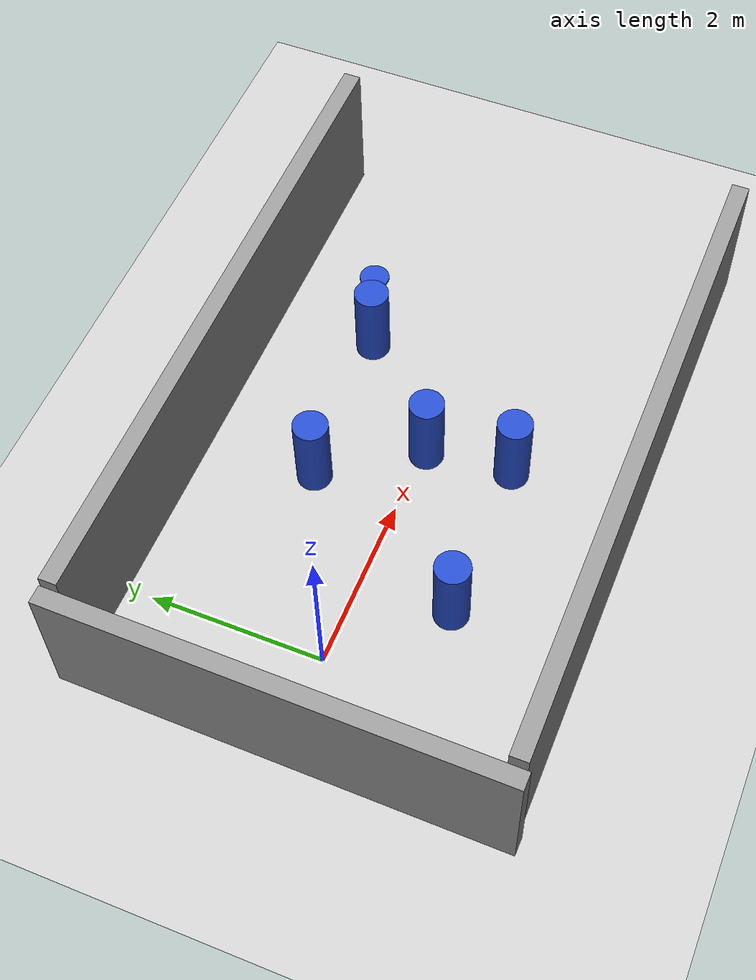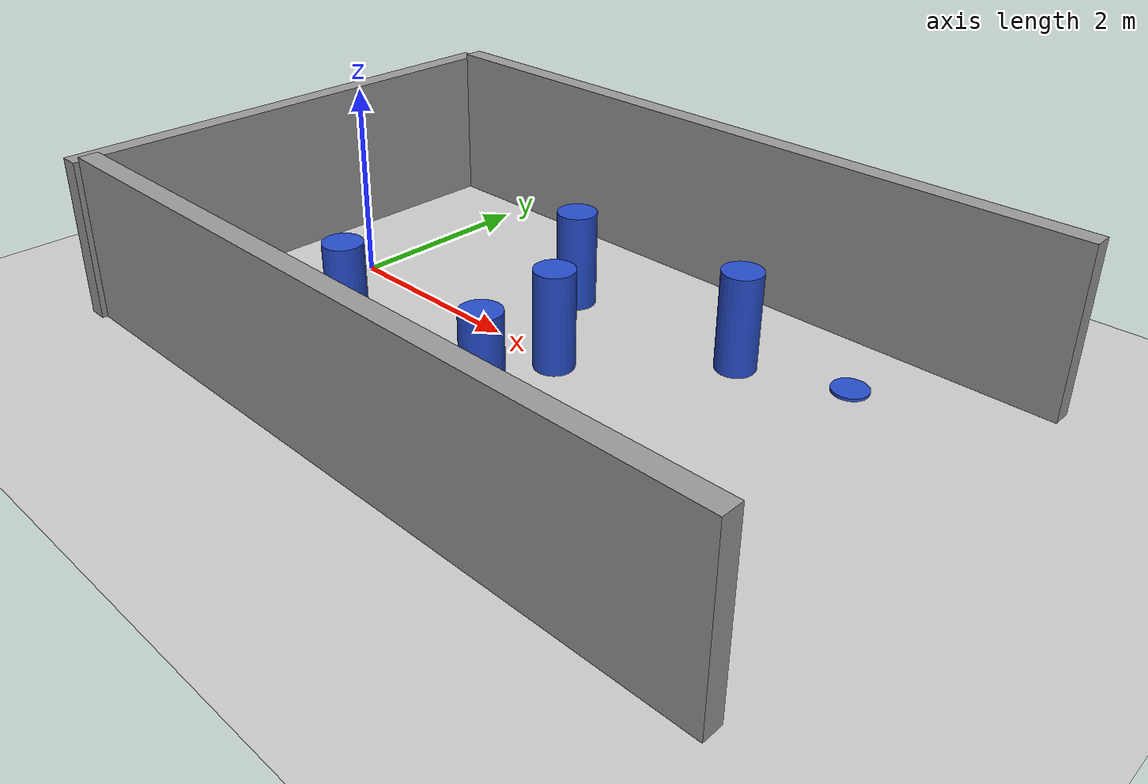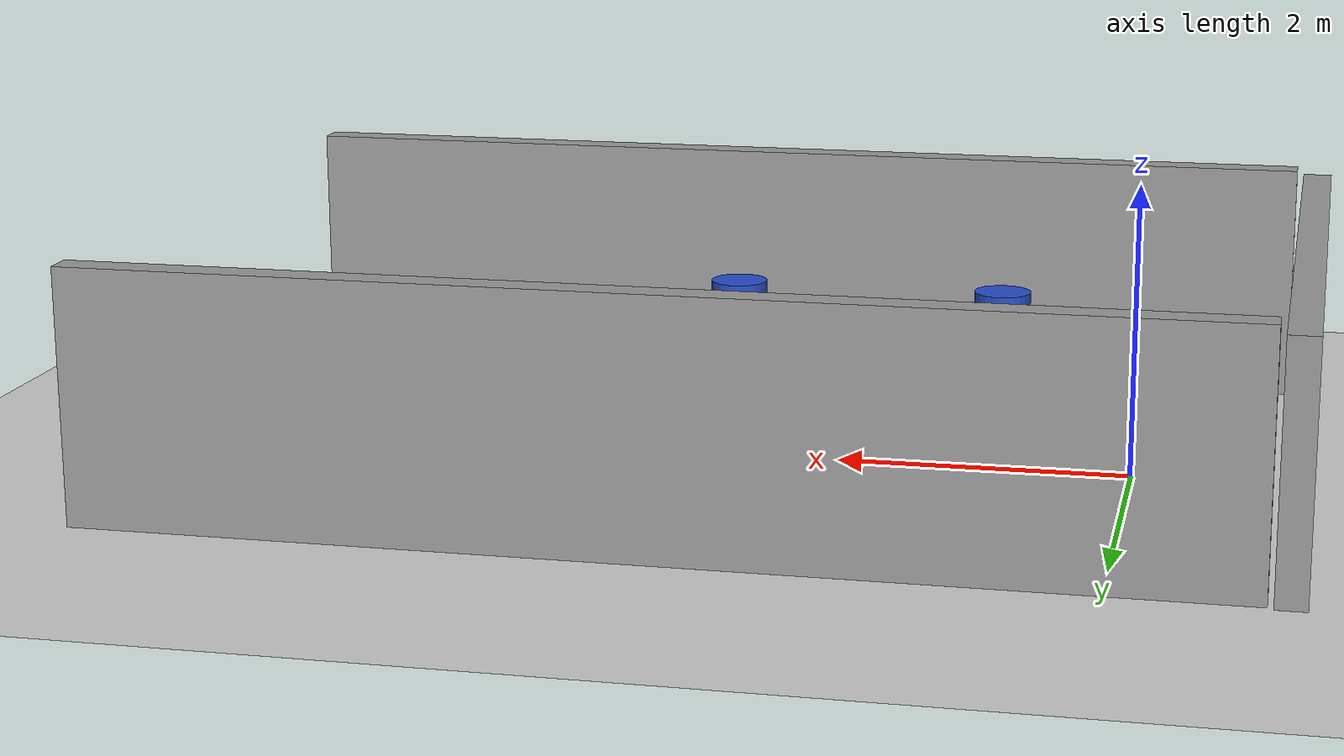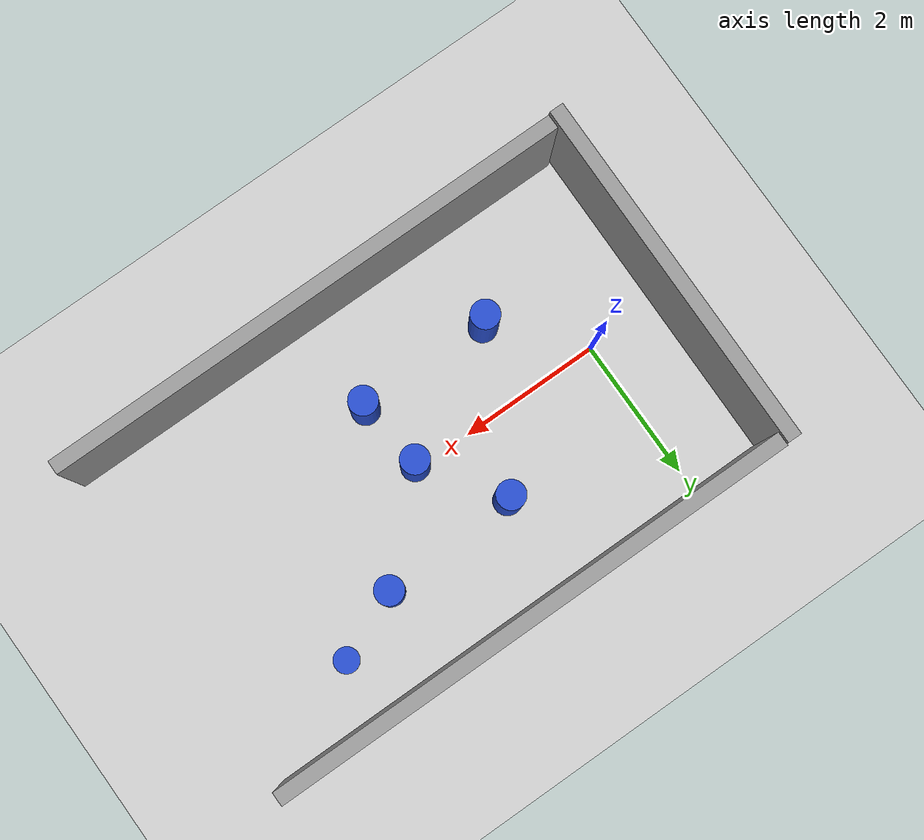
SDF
<sdf version="1.7">
 <world name="default">
  <physics type="ode">
   <ode>
    <solver>
     <type>quick</type>
     <iters>20</iters>
     <sor>1</sor>
     <use_dynamic_moi_rescaling>0</use_dynamic_moi_rescaling>
    </solver>
    <constraints>
     <cfm>0</cfm>
     <erp>0.2</erp>
     <contact_max_correcting_vel>100</contact_max_correcting_vel>
     <contact_surface_layer>0</contact_surface_layer>
    </constraints>
   </ode>
   <real_time_update_rate>1000</real_time_update_rate>
   <max_step_size>0.001</max_step_size>
   <real_time_factor>1</real_time_factor>
  </physics>
  <light name="sun" type="directional">
   <pose>0 0 10 0 -0 0</pose>
   <diffuse>0.8 0.8 0.8 1</diffuse>
   <specular>0.2 0.2 0.2 1</specular>
   <attenuation>
    <range>1000</range>
    <constant>0.9</constant>
    <linear>0.01</linear>
    <quadratic>0.001</quadratic>
   </attenuation>
   <direction>-0.5 0.1 -0.9</direction>
   <spot><inner_angle>0</inner_angle><outer_angle>0</outer_angle><falloff>0</falloff></spot>
  </light>
  <model name="ground_plane">
   <static>1</static>
   <link name="link">
    <collision name="collision">
     <geometry><plane><normal>0 0 1</normal><size>100 100</size></plane></geometry>
     <surface>
      <contact><collide_bitmask>65535</collide_bitmask></contact>
      <friction><ode><mu>100</mu><mu2>50</mu2></ode></friction>
     </surface>
    </collision>
    <visual name="visual">
     <cast_shadows>0</cast_shadows>
     <geometry><plane><normal>0 0 1</normal><size>100 100</size></plane></geometry>
     <material>
      <script><uri>file://media/materials/scripts/gazebo.material</uri><name>Gazebo/Grey</name></script>
     </material>
    </visual>
   </link>
  </model>
  <gravity>0 0 -9.81</gravity>
  <magnetic_field>6e-06 2.3e-05 -4.2e-05</magnetic_field>
  <atmosphere type="adiabatic"/>
  <scene><ambient>0.4 0.4 0.4 1</ambient><background>0.7 0.7 0.7 1</background><shadows>1</shadows></scene>
  <spherical_coordinates>
   <surface_model>EARTH_WGS84</surface_model>
   <latitude_deg>0</latitude_deg>
   <longitude_deg>0</longitude_deg>
   <elevation>0</elevation>
   <heading_deg>0</heading_deg>
  </spherical_coordinates>
  <model name="20x100cm_cylinder">
   <link name="link">
    <inertial>
     <mass>1</mass>
     <inertia><ixx>0.145833</ixx><ixy>0</ixy><ixz>0</ixz><iyy>0.145833</iyy><iyz>0</iyz><izz>0.125</izz></inertia>
    </inertial>
    <visual name="visual">
     <geometry><cylinder><radius>0.2</radius><length>1</length></cylinder></geometry>
     <material>
      <script><name>Gazebo/Blue</name><uri>file://media/materials/scripts/gazebo.material</uri></script>
      <shader type="pixel"><normal_map>__default__</normal_map></shader>
      <ambient>0.3 0.3 0.3 1</ambient>
      <diffuse>0.7 0.7 0.7 1</diffuse>
      <specular>0.01 0.01 0.01 1</specular>
      <emissive>0 0 0 1</emissive>
     </material>
    </visual>
    <collision name="collision">
     <geometry><cylinder><radius>0.2</radius><length>1</length></cylinder></geometry>
     <surface>
      <friction>
       <ode><mu>1</mu><mu2>1</mu2><fdir1>0 0 0</fdir1><slip1>0</slip1><slip2>0</slip2></ode>
       <torsional>
        <coefficient>1</coefficient>
        <patch_radius>0</patch_radius>
        <surface_radius>0</surface_radius>
        <use_patch_radius>1</use_patch_radius>
        <ode><slip>0</slip></ode>
       </torsional>
      </friction>
      <bounce><restitution_coefficient>0</restitution_coefficient><threshold>1e+06</threshold></bounce>
      <contact>
       <collide_without_contact>0</collide_without_contact>
       <collide_without_contact_bitmask>1</collide_without_contact_bitmask>
       <collide_bitmask>1</collide_bitmask>
       <ode>
        <soft_cfm>0</soft_cfm>
        <soft_erp>0.2</soft_erp>
        <kp>1e+13</kp>
        <kd>1</kd>
        <max_vel>0.01</max_vel>
        <min_depth>0</min_depth>
       </ode>
       <bullet>
        <split_impulse>1</split_impulse>
        <split_impulse_penetration_threshold>-0.01</split_impulse_penetration_threshold>
        <soft_cfm>0</soft_cfm>
        <soft_erp>0.2</soft_erp>
        <kp>1e+13</kp>
        <kd>1</kd>
       </bullet>
      </contact>
     </surface>
    </collision>
   </link>
   <static>0</static>
   <pose>2.80911 -0.05243 0.499999 0 0 -0.000113</pose>
  </model>
  <model name="20x100cm_cylinder_0">
   <link name="link">
    <inertial>
     <mass>1</mass>
     <inertia><ixx>0.145833</ixx><ixy>0</ixy><ixz>0</ixz><iyy>0.145833</iyy><iyz>0</iyz><izz>0.125</izz></inertia>
    </inertial>
    <visual name="visual">
     <geometry><cylinder><radius>0.2</radius><length>1</length></cylinder></geometry>
     <material>
      <script><name>Gazebo/Blue</name><uri>file://media/materials/scripts/gazebo.material</uri></script>
      <shader type="pixel"><normal_map>__default__</normal_map></shader>
      <ambient>0.3 0.3 0.3 1</ambient>
      <diffuse>0.7 0.7 0.7 1</diffuse>
      <specular>0.01 0.01 0.01 1</specular>
      <emissive>0 0 0 1</emissive>
     </material>
    </visual>
    <collision name="collision">
     <geometry><cylinder><radius>0.2</radius><length>1</length></cylinder></geometry>
     <surface>
      <friction>
       <ode><mu>1</mu><mu2>1</mu2><fdir1>0 0 0</fdir1><slip1>0</slip1><slip2>0</slip2></ode>
       <torsional>
        <coefficient>1</coefficient>
        <patch_radius>0</patch_radius>
        <surface_radius>0</surface_radius>
        <use_patch_radius>1</use_patch_radius>
        <ode><slip>0</slip></ode>
       </torsional>
      </friction>
      <bounce><restitution_coefficient>0</restitution_coefficient><threshold>1e+06</threshold></bounce>
      <contact>
       <collide_without_contact>0</collide_without_contact>
       <collide_without_contact_bitmask>1</collide_without_contact_bitmask>
       <collide_bitmask>1</collide_bitmask>
       <ode>
        <soft_cfm>0</soft_cfm>
        <soft_erp>0.2</soft_erp>
        <kp>1e+13</kp>
        <kd>1</kd>
        <max_vel>0.01</max_vel>
        <min_depth>0</min_depth>
       </ode>
       <bullet>
        <split_impulse>1</split_impulse>
        <split_impulse_penetration_threshold>-0.01</split_impulse_penetration_threshold>
        <soft_cfm>0</soft_cfm>
        <soft_erp>0.2</soft_erp>
        <kp>1e+13</kp>
        <kd>1</kd>
       </bullet>
      </contact>
     </surface>
    </collision>
   </link>
   <static>0</static>
   <pose>2.07889 1.01268 0.499999 0 0 -0.000113</pose>
  </model>
  <model name="20x100cm_cylinder_1">
   <link name="link">
    <inertial>
     <mass>1</mass>
     <inertia><ixx>0.145833</ixx><ixy>0</ixy><ixz>0</ixz><iyy>0.145833</iyy><iyz>0</iyz><izz>0.125</izz></inertia>
    </inertial>
    <visual name="visual">
     <geometry><cylinder><radius>0.2</radius><length>1</length></cylinder></geometry>
     <material>
      <script><name>Gazebo/Blue</name><uri>file://media/materials/scripts/gazebo.material</uri></script>
      <shader type="pixel"><normal_map>__default__</normal_map></shader>
      <ambient>0.3 0.3 0.3 1</ambient>
      <diffuse>0.7 0.7 0.7 1</diffuse>
      <specular>0.01 0.01 0.01 1</specular>
      <emissive>0 0 0 1</emissive>
     </material>
    </visual>
    <collision name="collision">
     <geometry><cylinder><radius>0.2</radius><length>1</length></cylinder></geometry>
     <surface>
      <friction>
       <ode><mu>1</mu><mu2>1</mu2><fdir1>0 0 0</fdir1><slip1>0</slip1><slip2>0</slip2></ode>
       <torsional>
        <coefficient>1</coefficient>
        <patch_radius>0</patch_radius>
        <surface_radius>0</surface_radius>
        <use_patch_radius>1</use_patch_radius>
        <ode><slip>0</slip></ode>
       </torsional>
      </friction>
      <bounce><restitution_coefficient>0</restitution_coefficient><threshold>1e+06</threshold></bounce>
      <contact>
       <collide_without_contact>0</collide_without_contact>
       <collide_without_contact_bitmask>1</collide_without_contact_bitmask>
       <collide_bitmask>1</collide_bitmask>
       <ode>
        <soft_cfm>0</soft_cfm>
        <soft_erp>0.2</soft_erp>
        <kp>1e+13</kp>
        <kd>1</kd>
        <max_vel>0.01</max_vel>
        <min_depth>0</min_depth>
       </ode>
       <bullet>
        <split_impulse>1</split_impulse>
        <split_impulse_penetration_threshold>-0.01</split_impulse_penetration_threshold>
        <soft_cfm>0</soft_cfm>
        <soft_erp>0.2</soft_erp>
        <kp>1e+13</kp>
        <kd>1</kd>
       </bullet>
      </contact>
     </surface>
    </collision>
   </link>
   <static>0</static>
   <pose>2.91445 -1.04081 0.499999 0 0 -0.000113</pose>
  </model>
  <model name="20x100cm_cylinder_2">
   <link name="link">
    <inertial>
     <mass>1</mass>
     <inertia><ixx>0.145833</ixx><ixy>0</ixy><ixz>0</ixz><iyy>0.145833</iyy><iyz>0</iyz><izz>0.125</izz></inertia>
    </inertial>
    <visual name="visual">
     <geometry><cylinder><radius>0.2</radius><length>1</length></cylinder></geometry>
     <material>
      <script><name>Gazebo/Blue</name><uri>file://media/materials/scripts/gazebo.material</uri></script>
      <shader type="pixel"><normal_map>__default__</normal_map></shader>
      <ambient>0.3 0.3 0.3 1</ambient>
      <diffuse>0.7 0.7 0.7 1</diffuse>
      <specular>0.01 0.01 0.01 1</specular>
      <emissive>0 0 0 1</emissive>
     </material>
    </visual>
    <collision name="collision">
     <geometry><cylinder><radius>0.2</radius><length>1</length></cylinder></geometry>
     <surface>
      <friction>
       <ode><mu>1</mu><mu2>1</mu2><fdir1>0 0 0</fdir1><slip1>0</slip1><slip2>0</slip2></ode>
       <torsional>
        <coefficient>1</coefficient>
        <patch_radius>0</patch_radius>
        <surface_radius>0</surface_radius>
        <use_patch_radius>1</use_patch_radius>
        <ode><slip>0</slip></ode>
       </torsional>
      </friction>
      <bounce><restitution_coefficient>0</restitution_coefficient><threshold>1e+06</threshold></bounce>
      <contact>
       <collide_without_contact>0</collide_without_contact>
       <collide_without_contact_bitmask>1</collide_without_contact_bitmask>
       <collide_bitmask>1</collide_bitmask>
       <ode>
        <soft_cfm>0</soft_cfm>
        <soft_erp>0.2</soft_erp>
        <kp>1e+13</kp>
        <kd>1</kd>
        <max_vel>0.01</max_vel>
        <min_depth>0</min_depth>
       </ode>
       <bullet>
        <split_impulse>1</split_impulse>
        <split_impulse_penetration_threshold>-0.01</split_impulse_penetration_threshold>
        <soft_cfm>0</soft_cfm>
        <soft_erp>0.2</soft_erp>
        <kp>1e+13</kp>
        <kd>1</kd>
       </bullet>
      </contact>
     </surface>
    </collision>
   </link>
   <static>0</static>
   <pose>4.02062 1.10718 0.499999 0 0 -0.000113</pose>
  </model>
  <model name="20x100cm_cylinder_3">
   <link name="link">
    <inertial>
     <mass>1</mass>
     <inertia><ixx>0.145833</ixx><ixy>0</ixy><ixz>0</ixz><iyy>0.145833</iyy><iyz>0</iyz><izz>0.125</izz></inertia>
    </inertial>
    <visual name="visual">
     <geometry><cylinder><radius>0.2</radius><length>1</length></cylinder></geometry>
     <material>
      <script><name>Gazebo/Blue</name><uri>file://media/materials/scripts/gazebo.material</uri></script>
      <shader type="pixel"><normal_map>__default__</normal_map></shader>
      <ambient>0.3 0.3 0.3 1</ambient>
      <diffuse>0.7 0.7 0.7 1</diffuse>
      <specular>0.01 0.01 0.01 1</specular>
      <emissive>0 0 0 1</emissive>
     </material>
    </visual>
    <collision name="collision">
     <geometry><cylinder><radius>0.2</radius><length>1</length></cylinder></geometry>
     <surface>
      <friction>
       <ode><mu>1</mu><mu2>1</mu2><fdir1>0 0 0</fdir1><slip1>0</slip1><slip2>0</slip2></ode>
       <torsional>
        <coefficient>1</coefficient>
        <patch_radius>0</patch_radius>
        <surface_radius>0</surface_radius>
        <use_patch_radius>1</use_patch_radius>
        <ode><slip>0</slip></ode>
       </torsional>
      </friction>
      <bounce><restitution_coefficient>0</restitution_coefficient><threshold>1e+06</threshold></bounce>
      <contact>
       <collide_without_contact>0</collide_without_contact>
       <collide_without_contact_bitmask>1</collide_without_contact_bitmask>
       <collide_bitmask>1</collide_bitmask>
       <ode>
        <soft_cfm>0</soft_cfm>
        <soft_erp>0.2</soft_erp>
        <kp>1e+13</kp>
        <kd>1</kd>
        <max_vel>0.01</max_vel>
        <min_depth>0</min_depth>
       </ode>
       <bullet>
        <split_impulse>1</split_impulse>
        <split_impulse_penetration_threshold>-0.01</split_impulse_penetration_threshold>
        <soft_cfm>0</soft_cfm>
        <soft_erp>0.2</soft_erp>
        <kp>1e+13</kp>
        <kd>1</kd>
       </bullet>
      </contact>
     </surface>
    </collision>
   </link>
   <static>0</static>
   <pose>1.0103 -1.0501 0.499999 0 0 -0.000113</pose>
  </model>
  <model name="goal">
   <link name="link">
    <inertial>
     <mass>2.33165</mass>
     <inertia>
      <ixx>0.0190484</ixx>
      <ixy>0</ixy>
      <ixz>0</ixz>
      <iyy>0.0190484</iyy>
      <iyz>0</iyz>
      <izz>0.0377765</izz>
     </inertia>
    </inertial>
    <visual name="visual">
     <geometry><cylinder><radius>0.180009</radius><length>0.0287069</length></cylinder></geometry>
     <material>
      <script><name>Gazebo/Blue</name><uri>file://media/materials/scripts/gazebo.material</uri></script>
      <shader type="pixel"><normal_map>__default__</normal_map></shader>
      <ambient>0.3 0.3 0.3 1</ambient>
      <diffuse>0.7 0.7 0.7 1</diffuse>
      <specular>0.01 0.01 0.01 1</specular>
      <emissive>1 0 0 1</emissive>
     </material>
    </visual>
    <collision name="collision">
     <geometry><cylinder><radius>0.180009</radius><length>0.028707</length></cylinder></geometry>
     <surface>
      <friction>
       <ode><mu>1</mu><mu2>1</mu2><fdir1>0 0 0</fdir1><slip1>0</slip1><slip2>0</slip2></ode>
       <torsional>
        <coefficient>1</coefficient>
        <patch_radius>0</patch_radius>
        <surface_radius>0</surface_radius>
        <use_patch_radius>1</use_patch_radius>
        <ode><slip>0</slip></ode>
       </torsional>
      </friction>
      <bounce><restitution_coefficient>0</restitution_coefficient><threshold>1e+06</threshold></bounce>
      <contact>
       <collide_without_contact>0</collide_without_contact>
       <collide_without_contact_bitmask>1</collide_without_contact_bitmask>
       <collide_bitmask>1</collide_bitmask>
       <ode>
        <soft_cfm>0</soft_cfm>
        <soft_erp>0.2</soft_erp>
        <kp>1e+13</kp>
        <kd>1</kd>
        <max_vel>0.01</max_vel>
        <min_depth>0</min_depth>
       </ode>
       <bullet>
        <split_impulse>1</split_impulse>
        <split_impulse_penetration_threshold>-0.01</split_impulse_penetration_threshold>
        <soft_cfm>0</soft_cfm>
        <soft_erp>0.2</soft_erp>
        <kp>1e+13</kp>
        <kd>1</kd>
       </bullet>
      </contact>
     </surface>
    </collision>
   </link>
   <static>0</static>
   <pose>5 1.5 0.017999 0 -0 0</pose>
  </model>
  <model name="wall_dow">
   <link name="link">
    <pose>-1.1727 0.017943 0.794503 0 -0 0</pose>
    <inertial>
     <inertia><ixx>0</ixx><ixy>0</ixy><ixz>0</ixz><iyy>0</iyy><iyz>0</iyz><izz>0</izz></inertia>
     <mass>0</mass>
    </inertial>
    <visual name="visual">
     <cast_shadows>0</cast_shadows>
     <geometry><box><size>5.05542 0.2 1.6945</size></box></geometry>
     <material>
      <script>
       <uri>model://grey_wall/materials/scripts</uri>
       <uri>model://grey_wall/materials/textures</uri>
       <name>vrc/grey_wall</name>
      </script>
      <shader type="pixel"/>
     </material>
    </visual>
    <collision name="collision">
     <geometry><box><size>5.05542 0.2 1.6945</size></box></geometry>
     <surface>
      <friction>
       <ode><mu>1</mu><mu2>1</mu2><fdir1>0 0 0</fdir1><slip1>0</slip1><slip2>0</slip2></ode>
       <torsional>
        <coefficient>1</coefficient>
        <patch_radius>0</patch_radius>
        <surface_radius>0</surface_radius>
        <use_patch_radius>1</use_patch_radius>
        <ode><slip>0</slip></ode>
       </torsional>
      </friction>
      <bounce><restitution_coefficient>0</restitution_coefficient><threshold>1e+06</threshold></bounce>
      <contact>
       <collide_without_contact>0</collide_without_contact>
       <collide_without_contact_bitmask>1</collide_without_contact_bitmask>
       <collide_bitmask>1</collide_bitmask>
       <ode>
        <soft_cfm>0</soft_cfm>
        <soft_erp>0.2</soft_erp>
        <kp>1e+13</kp>
        <kd>1</kd>
        <max_vel>0.01</max_vel>
        <min_depth>0</min_depth>
       </ode>
       <bullet>
        <split_impulse>1</split_impulse>
        <split_impulse_penetration_threshold>-0.01</split_impulse_penetration_threshold>
        <soft_cfm>0</soft_cfm>
        <soft_erp>0.2</soft_erp>
        <kp>1e+13</kp>
        <kd>1</kd>
       </bullet>
      </contact>
     </surface>
    </collision>
   </link>
   <static>1</static>
   <pose>-1.09144 1.11585 0 0 -0 1.5631</pose>
  </model>
  <model name="wall_sx">
   <link name="link">
    <pose>-0.014434 -0.093812 0.794503 0 -0 0</pose>
    <inertial>
     <inertia><ixx>0</ixx><ixy>0</ixy><ixz>0</ixz><iyy>0</iyy><iyz>0</iyz><izz>0</izz></inertia>
     <mass>0</mass>
    </inertial>
    <visual name="visual">
     <cast_shadows>0</cast_shadows>
     <geometry><box><size>7.5 0.2 1.6945</size></box></geometry>
     <material>
      <script>
       <uri>model://grey_wall/materials/scripts</uri>
       <uri>model://grey_wall/materials/textures</uri>
       <name>vrc/grey_wall</name>
      </script>
      <shader type="pixel"/>
     </material>
    </visual>
    <collision name="collision">
     <geometry><box><size>7.5 0.2 1.6945</size></box></geometry>
     <surface>
      <friction>
       <ode><mu>1</mu><mu2>1</mu2><fdir1>0 0 0</fdir1><slip1>0</slip1><slip2>0</slip2></ode>
       <torsional>
        <coefficient>1</coefficient>
        <patch_radius>0</patch_radius>
        <surface_radius>0</surface_radius>
        <use_patch_radius>1</use_patch_radius>
        <ode><slip>0</slip></ode>
       </torsional>
      </friction>
      <bounce><restitution_coefficient>0</restitution_coefficient><threshold>1e+06</threshold></bounce>
      <contact>
       <collide_without_contact>0</collide_without_contact>
       <collide_without_contact_bitmask>1</collide_without_contact_bitmask>
       <collide_bitmask>1</collide_bitmask>
       <ode>
        <soft_cfm>0</soft_cfm>
        <soft_erp>0.2</soft_erp>
        <kp>1e+13</kp>
        <kd>1</kd>
        <max_vel>0.01</max_vel>
        <min_depth>0</min_depth>
       </ode>
       <bullet>
        <split_impulse>1</split_impulse>
        <split_impulse_penetration_threshold>-0.01</split_impulse_penetration_threshold>
        <soft_cfm>0</soft_cfm>
        <soft_erp>0.2</soft_erp>
        <kp>1e+13</kp>
        <kd>1</kd>
       </bullet>
      </contact>
     </surface>
    </collision>
   </link>
   <static>1</static>
   <pose>2.77259 -2.35408 0.061849 0 -0 0</pose>
  </model>
  <model name="wall_dx">
   <link name="link">
    <pose>0 0 0.794503 0 -0 0</pose>
    <inertial>
     <inertia><ixx>0</ixx><ixy>0</ixy><ixz>0</ixz><iyy>0</iyy><iyz>0</iyz><izz>0</izz></inertia>
     <mass>0</mass>
    </inertial>
    <visual name="visual">
     <cast_shadows>0</cast_shadows>
     <geometry><box><size>7.5 0.2 1.6945</size></box></geometry>
     <material>
      <script>
       <uri>model://grey_wall/materials/scripts</uri>
       <uri>model://grey_wall/materials/textures</uri>
       <name>vrc/grey_wall</name>
      </script>
      <shader type="pixel"/>
     </material>
    </visual>
    <collision name="collision">
     <geometry><box><size>7.5 0.2 1.6945</size></box></geometry>
     <surface>
      <friction>
       <ode><mu>1</mu><mu2>1</mu2><fdir1>0 0 0</fdir1><slip1>0</slip1><slip2>0</slip2></ode>
       <torsional>
        <coefficient>1</coefficient>
        <patch_radius>0</patch_radius>
        <surface_radius>0</surface_radius>
        <use_patch_radius>1</use_patch_radius>
        <ode><slip>0</slip></ode>
       </torsional>
      </friction>
      <bounce><restitution_coefficient>0</restitution_coefficient><threshold>1e+06</threshold></bounce>
      <contact>
       <collide_without_contact>0</collide_without_contact>
       <collide_without_contact_bitmask>1</collide_without_contact_bitmask>
       <collide_bitmask>1</collide_bitmask>
       <ode>
        <soft_cfm>0</soft_cfm>
        <soft_erp>0.2</soft_erp>
        <kp>1e+13</kp>
        <kd>1</kd>
        <max_vel>0.01</max_vel>
        <min_depth>0</min_depth>
       </ode>
       <bullet>
        <split_impulse>1</split_impulse>
        <split_impulse_penetration_threshold>-0.01</split_impulse_penetration_threshold>
        <soft_cfm>0</soft_cfm>
        <soft_erp>0.2</soft_erp>
        <kp>1e+13</kp>
        <kd>1</kd>
       </bullet>
      </contact>
     </surface>
    </collision>
   </link>
   <static>1</static>
   <pose>2.7873 2.39102 0.061849 0 -0 0</pose>
  </model>
 </world>
</sdf>
